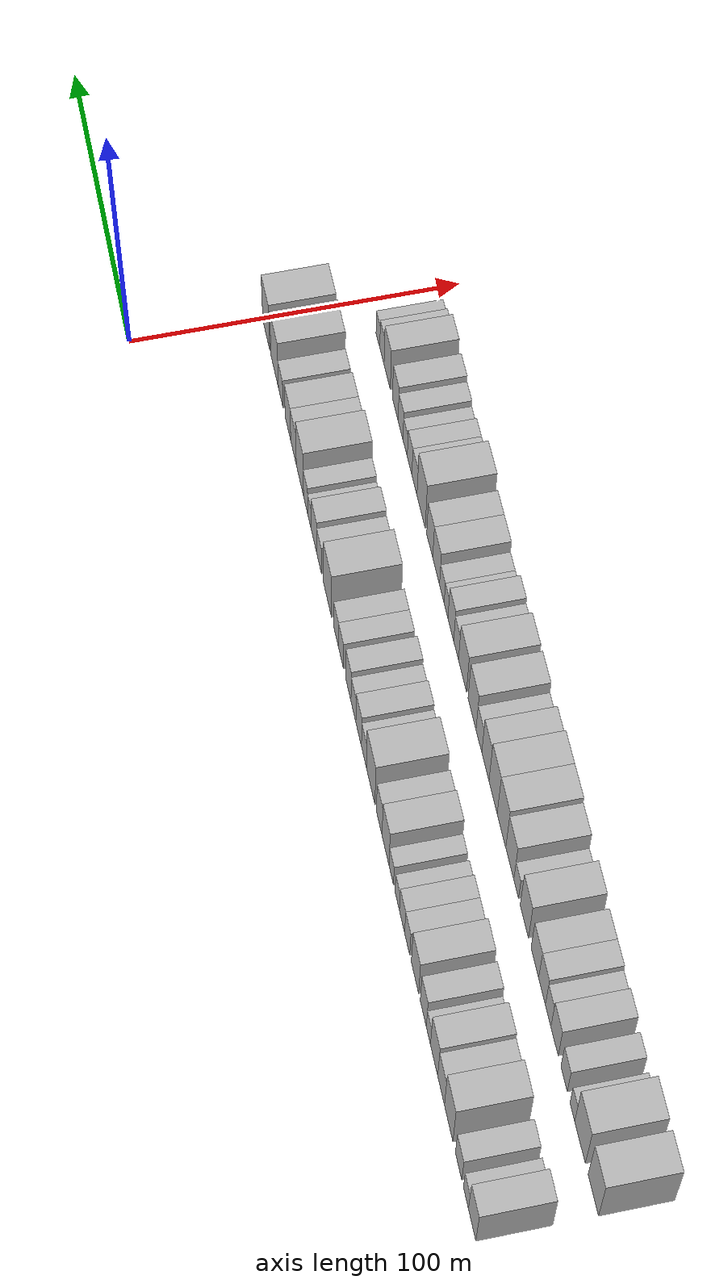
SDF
<sdf version="1.6">
 <world name="default">
  <model name="building_1">
   <static>1</static>
   <pose>50.0000 -279.7703 0 0.000000 0.000000 0.000000</pose>
   <link name="link">
    <pose>0 0 10.50 0 0 0</pose>
    <collision name="collision"><geometry><box><size>20.0000 8.4593 21.0000</size></box></geometry></collision>
    <visual name="visual">
     <cast_shadows>0</cast_shadows>
     <geometry><box><size>20.0000 8.4593 21.0000</size></box></geometry>
     <material>
      <script>
       <uri>model://HANNAS_wall/materials/scripts</uri>
       <uri>model://HANNAS_wall/materials/textures</uri>
       <name>vrc/HANNAS_wall</name>
      </script>
     </material>
    </visual>
   </link>
  </model>
  <model name="building_2">
   <static>1</static>
   <pose>50.0000 -272.6795 0 0.000000 0.000000 0.000000</pose>
   <link name="link">
    <pose>0 0 6.00 0 0 0</pose>
    <collision name="collision"><geometry><box><size>20.0000 5.7224 12.0000</size></box></geometry></collision>
    <visual name="visual">
     <cast_shadows>0</cast_shadows>
     <geometry><box><size>20.0000 5.7224 12.0000</size></box></geometry>
     <material>
      <script>
       <uri>model://HANNAS_wall/materials/scripts</uri>
       <uri>model://HANNAS_wall/materials/textures</uri>
       <name>vrc/HANNAS_wall</name>
      </script>
     </material>
    </visual>
   </link>
  </model>
  <model name="building_3">
   <static>1</static>
   <pose>50.0000 -264.1542 0 0.000000 0.000000 0.000000</pose>
   <link name="link">
    <pose>0 0 7.50 0 0 0</pose>
    <collision name="collision"><geometry><box><size>20.0000 7.3282 15.0000</size></box></geometry></collision>
    <visual name="visual">
     <cast_shadows>0</cast_shadows>
     <geometry><box><size>20.0000 7.3282 15.0000</size></box></geometry>
     <material>
      <script>
       <uri>model://HANNAS_wall/materials/scripts</uri>
       <uri>model://HANNAS_wall/materials/textures</uri>
       <name>vrc/HANNAS_wall</name>
      </script>
     </material>
    </visual>
   </link>
  </model>
  <model name="building_4">
   <static>1</static>
   <pose>50.0000 -252.5443 0 0.000000 0.000000 0.000000</pose>
   <link name="link">
    <pose>0 0 12.00 0 0 0</pose>
    <collision name="collision"><geometry><box><size>20.0000 9.8916 24.0000</size></box></geometry></collision>
    <visual name="visual">
     <cast_shadows>0</cast_shadows>
     <geometry><box><size>20.0000 9.8916 24.0000</size></box></geometry>
     <material>
      <script>
       <uri>model://HANNAS_wall/materials/scripts</uri>
       <uri>model://HANNAS_wall/materials/textures</uri>
       <name>vrc/HANNAS_wall</name>
      </script>
     </material>
    </visual>
   </link>
  </model>
  <model name="building_5">
   <static>1</static>
   <pose>50.0000 -243.5871 0 0.000000 0.000000 0.000000</pose>
   <link name="link">
    <pose>0 0 9.00 0 0 0</pose>
    <collision name="collision"><geometry><box><size>20.0000 8.0228 18.0000</size></box></geometry></collision>
    <visual name="visual">
     <cast_shadows>0</cast_shadows>
     <geometry><box><size>20.0000 8.0228 18.0000</size></box></geometry>
     <material>
      <script>
       <uri>model://HANNAS_wall/materials/scripts</uri>
       <uri>model://HANNAS_wall/materials/textures</uri>
       <name>vrc/HANNAS_wall</name>
      </script>
     </material>
    </visual>
   </link>
  </model>
  <model name="building_6">
   <static>1</static>
   <pose>50.0000 -235.2132 0 0.000000 0.000000 0.000000</pose>
   <link name="link">
    <pose>0 0 10.50 0 0 0</pose>
    <collision name="collision"><geometry><box><size>20.0000 8.7249 21.0000</size></box></geometry></collision>
    <visual name="visual">
     <cast_shadows>0</cast_shadows>
     <geometry><box><size>20.0000 8.7249 21.0000</size></box></geometry>
     <material>
      <script>
       <uri>model://HANNAS_wall/materials/scripts</uri>
       <uri>model://HANNAS_wall/materials/textures</uri>
       <name>vrc/HANNAS_wall</name>
      </script>
     </material>
    </visual>
   </link>
  </model>
  <model name="building_7">
   <static>1</static>
   <pose>50.0000 -228.3321 0 0.000000 0.000000 0.000000</pose>
   <link name="link">
    <pose>0 0 6.00 0 0 0</pose>
    <collision name="collision"><geometry><box><size>20.0000 5.0373 12.0000</size></box></geometry></collision>
    <visual name="visual">
     <cast_shadows>0</cast_shadows>
     <geometry><box><size>20.0000 5.0373 12.0000</size></box></geometry>
     <material>
      <script>
       <uri>model://HANNAS_wall/materials/scripts</uri>
       <uri>model://HANNAS_wall/materials/textures</uri>
       <name>vrc/HANNAS_wall</name>
      </script>
     </material>
    </visual>
   </link>
  </model>
  <model name="building_8">
   <static>1</static>
   <pose>50.0000 -222.1160 0 0.000000 0.000000 0.000000</pose>
   <link name="link">
    <pose>0 0 9.00 0 0 0</pose>
    <collision name="collision"><geometry><box><size>20.0000 7.3950 18.0000</size></box></geometry></collision>
    <visual name="visual">
     <cast_shadows>0</cast_shadows>
     <geometry><box><size>20.0000 7.3950 18.0000</size></box></geometry>
     <material>
      <script>
       <uri>model://HANNAS_wall/materials/scripts</uri>
       <uri>model://HANNAS_wall/materials/textures</uri>
       <name>vrc/HANNAS_wall</name>
      </script>
     </material>
    </visual>
   </link>
  </model>
  <model name="building_9">
   <static>1</static>
   <pose>50.0000 -211.9056 0 0.000000 0.000000 0.000000</pose>
   <link name="link">
    <pose>0 0 10.50 0 0 0</pose>
    <collision name="collision"><geometry><box><size>20.0000 9.0258 21.0000</size></box></geometry></collision>
    <visual name="visual">
     <cast_shadows>0</cast_shadows>
     <geometry><box><size>20.0000 9.0258 21.0000</size></box></geometry>
     <material>
      <script>
       <uri>model://HANNAS_wall/materials/scripts</uri>
       <uri>model://HANNAS_wall/materials/textures</uri>
       <name>vrc/HANNAS_wall</name>
      </script>
     </material>
    </visual>
   </link>
  </model>
  <model name="building_10">
   <static>1</static>
   <pose>50.0000 -202.2077 0 0.000000 0.000000 0.000000</pose>
   <link name="link">
    <pose>0 0 7.50 0 0 0</pose>
    <collision name="collision"><geometry><box><size>20.0000 6.3702 15.0000</size></box></geometry></collision>
    <visual name="visual">
     <cast_shadows>0</cast_shadows>
     <geometry><box><size>20.0000 6.3702 15.0000</size></box></geometry>
     <material>
      <script>
       <uri>model://HANNAS_wall/materials/scripts</uri>
       <uri>model://HANNAS_wall/materials/textures</uri>
       <name>vrc/HANNAS_wall</name>
      </script>
     </material>
    </visual>
   </link>
  </model>
  <model name="building_11">
   <static>1</static>
   <pose>50.0000 -195.7344 0 0.000000 0.000000 0.000000</pose>
   <link name="link">
    <pose>0 0 7.50 0 0 0</pose>
    <collision name="collision"><geometry><box><size>20.0000 6.5764 15.0000</size></box></geometry></collision>
    <visual name="visual">
     <cast_shadows>0</cast_shadows>
     <geometry><box><size>20.0000 6.5764 15.0000</size></box></geometry>
     <material>
      <script>
       <uri>model://HANNAS_wall/materials/scripts</uri>
       <uri>model://HANNAS_wall/materials/textures</uri>
       <name>vrc/HANNAS_wall</name>
      </script>
     </material>
    </visual>
   </link>
  </model>
  <model name="building_12">
   <static>1</static>
   <pose>50.0000 -189.6909 0 0.000000 0.000000 0.000000</pose>
   <link name="link">
    <pose>0 0 6.00 0 0 0</pose>
    <collision name="collision"><geometry><box><size>20.0000 5.5105 12.0000</size></box></geometry></collision>
    <visual name="visual">
     <cast_shadows>0</cast_shadows>
     <geometry><box><size>20.0000 5.5105 12.0000</size></box></geometry>
     <material>
      <script>
       <uri>model://HANNAS_wall/materials/scripts</uri>
       <uri>model://HANNAS_wall/materials/textures</uri>
       <name>vrc/HANNAS_wall</name>
      </script>
     </material>
    </visual>
   </link>
  </model>
  <model name="building_13">
   <static>1</static>
   <pose>50.0000 -182.0485 0 0.000000 0.000000 0.000000</pose>
   <link name="link">
    <pose>0 0 6.00 0 0 0</pose>
    <collision name="collision"><geometry><box><size>20.0000 5.7744 12.0000</size></box></geometry></collision>
    <visual name="visual">
     <cast_shadows>0</cast_shadows>
     <geometry><box><size>20.0000 5.7744 12.0000</size></box></geometry>
     <material>
      <script>
       <uri>model://HANNAS_wall/materials/scripts</uri>
       <uri>model://HANNAS_wall/materials/textures</uri>
       <name>vrc/HANNAS_wall</name>
      </script>
     </material>
    </visual>
   </link>
  </model>
  <model name="building_14">
   <static>1</static>
   <pose>50.0000 -174.7064 0 0.000000 0.000000 0.000000</pose>
   <link name="link">
    <pose>0 0 10.50 0 0 0</pose>
    <collision name="collision"><geometry><box><size>20.0000 8.9098 21.0000</size></box></geometry></collision>
    <visual name="visual">
     <cast_shadows>0</cast_shadows>
     <geometry><box><size>20.0000 8.9098 21.0000</size></box></geometry>
     <material>
      <script>
       <uri>model://HANNAS_wall/materials/scripts</uri>
       <uri>model://HANNAS_wall/materials/textures</uri>
       <name>vrc/HANNAS_wall</name>
      </script>
     </material>
    </visual>
   </link>
  </model>
  <model name="building_15">
   <static>1</static>
   <pose>50.0000 -166.5727 0 0.000000 0.000000 0.000000</pose>
   <link name="link">
    <pose>0 0 9.00 0 0 0</pose>
    <collision name="collision"><geometry><box><size>20.0000 7.3575 18.0000</size></box></geometry></collision>
    <visual name="visual">
     <cast_shadows>0</cast_shadows>
     <geometry><box><size>20.0000 7.3575 18.0000</size></box></geometry>
     <material>
      <script>
       <uri>model://HANNAS_wall/materials/scripts</uri>
       <uri>model://HANNAS_wall/materials/textures</uri>
       <name>vrc/HANNAS_wall</name>
      </script>
     </material>
    </visual>
   </link>
  </model>
  <model name="building_16">
   <static>1</static>
   <pose>50.0000 -155.3048 0 0.000000 0.000000 0.000000</pose>
   <link name="link">
    <pose>0 0 12.00 0 0 0</pose>
    <collision name="collision"><geometry><box><size>20.0000 11.1784 24.0000</size></box></geometry></collision>
    <visual name="visual">
     <cast_shadows>0</cast_shadows>
     <geometry><box><size>20.0000 11.1784 24.0000</size></box></geometry>
     <material>
      <script>
       <uri>model://HANNAS_wall/materials/scripts</uri>
       <uri>model://HANNAS_wall/materials/textures</uri>
       <name>vrc/HANNAS_wall</name>
      </script>
     </material>
    </visual>
   </link>
  </model>
  <model name="building_17">
   <static>1</static>
   <pose>50.0000 -146.4196 0 0.000000 0.000000 0.000000</pose>
   <link name="link">
    <pose>0 0 7.50 0 0 0</pose>
    <collision name="collision"><geometry><box><size>20.0000 6.5921 15.0000</size></box></geometry></collision>
    <visual name="visual">
     <cast_shadows>0</cast_shadows>
     <geometry><box><size>20.0000 6.5921 15.0000</size></box></geometry>
     <material>
      <script>
       <uri>model://HANNAS_wall/materials/scripts</uri>
       <uri>model://HANNAS_wall/materials/textures</uri>
       <name>vrc/HANNAS_wall</name>
      </script>
     </material>
    </visual>
   </link>
  </model>
  <model name="building_18">
   <static>1</static>
   <pose>50.0000 -139.3675 0 0.000000 0.000000 0.000000</pose>
   <link name="link">
    <pose>0 0 9.00 0 0 0</pose>
    <collision name="collision"><geometry><box><size>20.0000 7.5121 18.0000</size></box></geometry></collision>
    <visual name="visual">
     <cast_shadows>0</cast_shadows>
     <geometry><box><size>20.0000 7.5121 18.0000</size></box></geometry>
     <material>
      <script>
       <uri>model://HANNAS_wall/materials/scripts</uri>
       <uri>model://HANNAS_wall/materials/textures</uri>
       <name>vrc/HANNAS_wall</name>
      </script>
     </material>
    </visual>
   </link>
  </model>
  <model name="building_19">
   <static>1</static>
   <pose>50.0000 -132.3308 0 0.000000 0.000000 0.000000</pose>
   <link name="link">
    <pose>0 0 7.50 0 0 0</pose>
    <collision name="collision"><geometry><box><size>20.0000 6.5614 15.0000</size></box></geometry></collision>
    <visual name="visual">
     <cast_shadows>0</cast_shadows>
     <geometry><box><size>20.0000 6.5614 15.0000</size></box></geometry>
     <material>
      <script>
       <uri>model://HANNAS_wall/materials/scripts</uri>
       <uri>model://HANNAS_wall/materials/textures</uri>
       <name>vrc/HANNAS_wall</name>
      </script>
     </material>
    </visual>
   </link>
  </model>
  <model name="building_20">
   <static>1</static>
   <pose>50.0000 -125.4148 0 0.000000 0.000000 0.000000</pose>
   <link name="link">
    <pose>0 0 9.00 0 0 0</pose>
    <collision name="collision"><geometry><box><size>20.0000 7.2706 18.0000</size></box></geometry></collision>
    <visual name="visual">
     <cast_shadows>0</cast_shadows>
     <geometry><box><size>20.0000 7.2706 18.0000</size></box></geometry>
     <material>
      <script>
       <uri>model://HANNAS_wall/materials/scripts</uri>
       <uri>model://HANNAS_wall/materials/textures</uri>
       <name>vrc/HANNAS_wall</name>
      </script>
     </material>
    </visual>
   </link>
  </model>
  <model name="building_21">
   <static>1</static>
   <pose>50.0000 -115.3287 0 0.000000 0.000000 0.000000</pose>
   <link name="link">
    <pose>0 0 7.50 0 0 0</pose>
    <collision name="collision"><geometry><box><size>20.0000 6.9017 15.0000</size></box></geometry></collision>
    <visual name="visual">
     <cast_shadows>0</cast_shadows>
     <geometry><box><size>20.0000 6.9017 15.0000</size></box></geometry>
     <material>
      <script>
       <uri>model://HANNAS_wall/materials/scripts</uri>
       <uri>model://HANNAS_wall/materials/textures</uri>
       <name>vrc/HANNAS_wall</name>
      </script>
     </material>
    </visual>
   </link>
  </model>
  <model name="building_22">
   <static>1</static>
   <pose>50.0000 -108.5586 0 0.000000 0.000000 0.000000</pose>
   <link name="link">
    <pose>0 0 7.50 0 0 0</pose>
    <collision name="collision"><geometry><box><size>20.0000 6.6385 15.0000</size></box></geometry></collision>
    <visual name="visual">
     <cast_shadows>0</cast_shadows>
     <geometry><box><size>20.0000 6.6385 15.0000</size></box></geometry>
     <material>
      <script>
       <uri>model://HANNAS_wall/materials/scripts</uri>
       <uri>model://HANNAS_wall/materials/textures</uri>
       <name>vrc/HANNAS_wall</name>
      </script>
     </material>
    </visual>
   </link>
  </model>
  <model name="building_23">
   <static>1</static>
   <pose>50.0000 -96.6324 0 0.000000 0.000000 0.000000</pose>
   <link name="link">
    <pose>0 0 12.00 0 0 0</pose>
    <collision name="collision"><geometry><box><size>20.0000 11.2139 24.0000</size></box></geometry></collision>
    <visual name="visual">
     <cast_shadows>0</cast_shadows>
     <geometry><box><size>20.0000 11.2139 24.0000</size></box></geometry>
     <material>
      <script>
       <uri>model://HANNAS_wall/materials/scripts</uri>
       <uri>model://HANNAS_wall/materials/textures</uri>
       <name>vrc/HANNAS_wall</name>
      </script>
     </material>
    </visual>
   </link>
  </model>
  <model name="building_24">
   <static>1</static>
   <pose>50.0000 -84.7754 0 0.000000 0.000000 0.000000</pose>
   <link name="link">
    <pose>0 0 7.50 0 0 0</pose>
    <collision name="collision"><geometry><box><size>20.0000 6.5001 15.0000</size></box></geometry></collision>
    <visual name="visual">
     <cast_shadows>0</cast_shadows>
     <geometry><box><size>20.0000 6.5001 15.0000</size></box></geometry>
     <material>
      <script>
       <uri>model://HANNAS_wall/materials/scripts</uri>
       <uri>model://HANNAS_wall/materials/textures</uri>
       <name>vrc/HANNAS_wall</name>
      </script>
     </material>
    </visual>
   </link>
  </model>
  <model name="building_25">
   <static>1</static>
   <pose>50.0000 -77.5405 0 0.000000 0.000000 0.000000</pose>
   <link name="link">
    <pose>0 0 9.00 0 0 0</pose>
    <collision name="collision"><geometry><box><size>20.0000 7.9698 18.0000</size></box></geometry></collision>
    <visual name="visual">
     <cast_shadows>0</cast_shadows>
     <geometry><box><size>20.0000 7.9698 18.0000</size></box></geometry>
     <material>
      <script>
       <uri>model://HANNAS_wall/materials/scripts</uri>
       <uri>model://HANNAS_wall/materials/textures</uri>
       <name>vrc/HANNAS_wall</name>
      </script>
     </material>
    </visual>
   </link>
  </model>
  <model name="building_26">
   <static>1</static>
   <pose>50.0000 -70.9993 0 0.000000 0.000000 0.000000</pose>
   <link name="link">
    <pose>0 0 6.00 0 0 0</pose>
    <collision name="collision"><geometry><box><size>20.0000 5.1126 12.0000</size></box></geometry></collision>
    <visual name="visual">
     <cast_shadows>0</cast_shadows>
     <geometry><box><size>20.0000 5.1126 12.0000</size></box></geometry>
     <material>
      <script>
       <uri>model://HANNAS_wall/materials/scripts</uri>
       <uri>model://HANNAS_wall/materials/textures</uri>
       <name>vrc/HANNAS_wall</name>
      </script>
     </material>
    </visual>
   </link>
  </model>
  <model name="building_27">
   <static>1</static>
   <pose>50.0000 -65.3010 0 0.000000 0.000000 0.000000</pose>
   <link name="link">
    <pose>0 0 7.50 0 0 0</pose>
    <collision name="collision"><geometry><box><size>20.0000 6.2841 15.0000</size></box></geometry></collision>
    <visual name="visual">
     <cast_shadows>0</cast_shadows>
     <geometry><box><size>20.0000 6.2841 15.0000</size></box></geometry>
     <material>
      <script>
       <uri>model://HANNAS_wall/materials/scripts</uri>
       <uri>model://HANNAS_wall/materials/textures</uri>
       <name>vrc/HANNAS_wall</name>
      </script>
     </material>
    </visual>
   </link>
  </model>
  <model name="building_28">
   <static>1</static>
   <pose>50.0000 -56.8508 0 0.000000 0.000000 0.000000</pose>
   <link name="link">
    <pose>0 0 12.00 0 0 0</pose>
    <collision name="collision"><geometry><box><size>20.0000 10.6163 24.0000</size></box></geometry></collision>
    <visual name="visual">
     <cast_shadows>0</cast_shadows>
     <geometry><box><size>20.0000 10.6163 24.0000</size></box></geometry>
     <material>
      <script>
       <uri>model://HANNAS_wall/materials/scripts</uri>
       <uri>model://HANNAS_wall/materials/textures</uri>
       <name>vrc/HANNAS_wall</name>
      </script>
     </material>
    </visual>
   </link>
  </model>
  <model name="building_29">
   <static>1</static>
   <pose>50.0000 -47.4027 0 0.000000 0.000000 0.000000</pose>
   <link name="link">
    <pose>0 0 9.00 0 0 0</pose>
    <collision name="collision"><geometry><box><size>20.0000 8.2799 18.0000</size></box></geometry></collision>
    <visual name="visual">
     <cast_shadows>0</cast_shadows>
     <geometry><box><size>20.0000 8.2799 18.0000</size></box></geometry>
     <material>
      <script>
       <uri>model://HANNAS_wall/materials/scripts</uri>
       <uri>model://HANNAS_wall/materials/textures</uri>
       <name>vrc/HANNAS_wall</name>
      </script>
     </material>
    </visual>
   </link>
  </model>
  <model name="building_30">
   <static>1</static>
   <pose>50.0000 -39.0832 0 0.000000 0.000000 0.000000</pose>
   <link name="link">
    <pose>0 0 9.00 0 0 0</pose>
    <collision name="collision"><geometry><box><size>20.0000 8.3590 18.0000</size></box></geometry></collision>
    <visual name="visual">
     <cast_shadows>0</cast_shadows>
     <geometry><box><size>20.0000 8.3590 18.0000</size></box></geometry>
     <material>
      <script>
       <uri>model://HANNAS_wall/materials/scripts</uri>
       <uri>model://HANNAS_wall/materials/textures</uri>
       <name>vrc/HANNAS_wall</name>
      </script>
     </material>
    </visual>
   </link>
  </model>
  <model name="building_31">
   <static>1</static>
   <pose>50.0000 -28.3617 0 0.000000 0.000000 0.000000</pose>
   <link name="link">
    <pose>0 0 7.50 0 0 0</pose>
    <collision name="collision"><geometry><box><size>20.0000 7.0841 15.0000</size></box></geometry></collision>
    <visual name="visual">
     <cast_shadows>0</cast_shadows>
     <geometry><box><size>20.0000 7.0841 15.0000</size></box></geometry>
     <material>
      <script>
       <uri>model://HANNAS_wall/materials/scripts</uri>
       <uri>model://HANNAS_wall/materials/textures</uri>
       <name>vrc/HANNAS_wall</name>
      </script>
     </material>
    </visual>
   </link>
  </model>
  <model name="building_32">
   <static>1</static>
   <pose>50.0000 -19.1570 0 0.000000 0.000000 0.000000</pose>
   <link name="link">
    <pose>0 0 12.00 0 0 0</pose>
    <collision name="collision"><geometry><box><size>20.0000 11.3253 24.0000</size></box></geometry></collision>
    <visual name="visual">
     <cast_shadows>0</cast_shadows>
     <geometry><box><size>20.0000 11.3253 24.0000</size></box></geometry>
     <material>
      <script>
       <uri>model://HANNAS_wall/materials/scripts</uri>
       <uri>model://HANNAS_wall/materials/textures</uri>
       <name>vrc/HANNAS_wall</name>
      </script>
     </material>
    </visual>
   </link>
  </model>
  <model name="building_33">
   <static>1</static>
   <pose>50.0000 -6.0916 0 0.000000 0.000000 0.000000</pose>
   <link name="link">
    <pose>0 0 12.00 0 0 0</pose>
    <collision name="collision"><geometry><box><size>20.0000 10.8056 24.0000</size></box></geometry></collision>
    <visual name="visual">
     <cast_shadows>0</cast_shadows>
     <geometry><box><size>20.0000 10.8056 24.0000</size></box></geometry>
     <material>
      <script>
       <uri>model://HANNAS_wall/materials/scripts</uri>
       <uri>model://HANNAS_wall/materials/textures</uri>
       <name>vrc/HANNAS_wall</name>
      </script>
     </material>
    </visual>
   </link>
  </model>
  <model name="building_67">
   <static>1</static>
   <pose>82.0000 -278.5044 0 0.000000 0.000000 0.000000</pose>
   <link name="link">
    <pose>0 0 12.00 0 0 0</pose>
    <collision name="collision"><geometry><box><size>20.0000 10.9913 24.0000</size></box></geometry></collision>
    <visual name="visual">
     <cast_shadows>0</cast_shadows>
     <geometry><box><size>20.0000 10.9913 24.0000</size></box></geometry>
     <material>
      <script>
       <uri>model://HANNAS_wall/materials/scripts</uri>
       <uri>model://HANNAS_wall/materials/textures</uri>
       <name>vrc/HANNAS_wall</name>
      </script>
     </material>
    </visual>
   </link>
  </model>
  <model name="building_68">
   <static>1</static>
   <pose>82.0000 -264.3001 0 0.000000 0.000000 0.000000</pose>
   <link name="link">
    <pose>0 0 12.00 0 0 0</pose>
    <collision name="collision"><geometry><box><size>20.0000 11.4173 24.0000</size></box></geometry></collision>
    <visual name="visual">
     <cast_shadows>0</cast_shadows>
     <geometry><box><size>20.0000 11.4173 24.0000</size></box></geometry>
     <material>
      <script>
       <uri>model://HANNAS_wall/materials/scripts</uri>
       <uri>model://HANNAS_wall/materials/textures</uri>
       <name>vrc/HANNAS_wall</name>
      </script>
     </material>
    </visual>
   </link>
  </model>
  <model name="building_69">
   <static>1</static>
   <pose>82.0000 -256.0346 0 0.000000 0.000000 0.000000</pose>
   <link name="link">
    <pose>0 0 6.00 0 0 0</pose>
    <collision name="collision"><geometry><box><size>20.0000 5.1137 12.0000</size></box></geometry></collision>
    <visual name="visual">
     <cast_shadows>0</cast_shadows>
     <geometry><box><size>20.0000 5.1137 12.0000</size></box></geometry>
     <material>
      <script>
       <uri>model://HANNAS_wall/materials/scripts</uri>
       <uri>model://HANNAS_wall/materials/textures</uri>
       <name>vrc/HANNAS_wall</name>
      </script>
     </material>
    </visual>
   </link>
  </model>
  <model name="building_70">
   <static>1</static>
   <pose>82.0000 -246.9900 0 0.000000 0.000000 0.000000</pose>
   <link name="link">
    <pose>0 0 7.50 0 0 0</pose>
    <collision name="collision"><geometry><box><size>20.0000 6.9753 15.0000</size></box></geometry></collision>
    <visual name="visual">
     <cast_shadows>0</cast_shadows>
     <geometry><box><size>20.0000 6.9753 15.0000</size></box></geometry>
     <material>
      <script>
       <uri>model://HANNAS_wall/materials/scripts</uri>
       <uri>model://HANNAS_wall/materials/textures</uri>
       <name>vrc/HANNAS_wall</name>
      </script>
     </material>
    </visual>
   </link>
  </model>
  <model name="building_71">
   <static>1</static>
   <pose>82.0000 -236.4794 0 0.000000 0.000000 0.000000</pose>
   <link name="link">
    <pose>0 0 9.00 0 0 0</pose>
    <collision name="collision"><geometry><box><size>20.0000 8.0461 18.0000</size></box></geometry></collision>
    <visual name="visual">
     <cast_shadows>0</cast_shadows>
     <geometry><box><size>20.0000 8.0461 18.0000</size></box></geometry>
     <material>
      <script>
       <uri>model://HANNAS_wall/materials/scripts</uri>
       <uri>model://HANNAS_wall/materials/textures</uri>
       <name>vrc/HANNAS_wall</name>
      </script>
     </material>
    </visual>
   </link>
  </model>
  <model name="building_72">
   <static>1</static>
   <pose>82.0000 -229.3407 0 0.000000 0.000000 0.000000</pose>
   <link name="link">
    <pose>0 0 7.50 0 0 0</pose>
    <collision name="collision"><geometry><box><size>20.0000 6.2312 15.0000</size></box></geometry></collision>
    <visual name="visual">
     <cast_shadows>0</cast_shadows>
     <geometry><box><size>20.0000 6.2312 15.0000</size></box></geometry>
     <material>
      <script>
       <uri>model://HANNAS_wall/materials/scripts</uri>
       <uri>model://HANNAS_wall/materials/textures</uri>
       <name>vrc/HANNAS_wall</name>
      </script>
     </material>
    </visual>
   </link>
  </model>
  <model name="building_73">
   <static>1</static>
   <pose>82.0000 -222.4257 0 0.000000 0.000000 0.000000</pose>
   <link name="link">
    <pose>0 0 9.00 0 0 0</pose>
    <collision name="collision"><geometry><box><size>20.0000 7.5988 18.0000</size></box></geometry></collision>
    <visual name="visual">
     <cast_shadows>0</cast_shadows>
     <geometry><box><size>20.0000 7.5988 18.0000</size></box></geometry>
     <material>
      <script>
       <uri>model://HANNAS_wall/materials/scripts</uri>
       <uri>model://HANNAS_wall/materials/textures</uri>
       <name>vrc/HANNAS_wall</name>
      </script>
     </material>
    </visual>
   </link>
  </model>
  <model name="building_74">
   <static>1</static>
   <pose>82.0000 -214.3149 0 0.000000 0.000000 0.000000</pose>
   <link name="link">
    <pose>0 0 9.00 0 0 0</pose>
    <collision name="collision"><geometry><box><size>20.0000 8.6228 18.0000</size></box></geometry></collision>
    <visual name="visual">
     <cast_shadows>0</cast_shadows>
     <geometry><box><size>20.0000 8.6228 18.0000</size></box></geometry>
     <material>
      <script>
       <uri>model://HANNAS_wall/materials/scripts</uri>
       <uri>model://HANNAS_wall/materials/textures</uri>
       <name>vrc/HANNAS_wall</name>
      </script>
     </material>
    </visual>
   </link>
  </model>
  <model name="building_75">
   <static>1</static>
   <pose>82.0000 -202.2461 0 0.000000 0.000000 0.000000</pose>
   <link name="link">
    <pose>0 0 10.50 0 0 0</pose>
    <collision name="collision"><geometry><box><size>20.0000 9.5149 21.0000</size></box></geometry></collision>
    <visual name="visual">
     <cast_shadows>0</cast_shadows>
     <geometry><box><size>20.0000 9.5149 21.0000</size></box></geometry>
     <material>
      <script>
       <uri>model://HANNAS_wall/materials/scripts</uri>
       <uri>model://HANNAS_wall/materials/textures</uri>
       <name>vrc/HANNAS_wall</name>
      </script>
     </material>
    </visual>
   </link>
  </model>
  <model name="building_76">
   <static>1</static>
   <pose>82.0000 -192.7386 0 0.000000 0.000000 0.000000</pose>
   <link name="link">
    <pose>0 0 6.00 0 0 0</pose>
    <collision name="collision"><geometry><box><size>20.0000 5.5001 12.0000</size></box></geometry></collision>
    <visual name="visual">
     <cast_shadows>0</cast_shadows>
     <geometry><box><size>20.0000 5.5001 12.0000</size></box></geometry>
     <material>
      <script>
       <uri>model://HANNAS_wall/materials/scripts</uri>
       <uri>model://HANNAS_wall/materials/textures</uri>
       <name>vrc/HANNAS_wall</name>
      </script>
     </material>
    </visual>
   </link>
  </model>
  <model name="building_77">
   <static>1</static>
   <pose>82.0000 -185.2556 0 0.000000 0.000000 0.000000</pose>
   <link name="link">
    <pose>0 0 10.50 0 0 0</pose>
    <collision name="collision"><geometry><box><size>20.0000 9.4658 21.0000</size></box></geometry></collision>
    <visual name="visual">
     <cast_shadows>0</cast_shadows>
     <geometry><box><size>20.0000 9.4658 21.0000</size></box></geometry>
     <material>
      <script>
       <uri>model://HANNAS_wall/materials/scripts</uri>
       <uri>model://HANNAS_wall/materials/textures</uri>
       <name>vrc/HANNAS_wall</name>
      </script>
     </material>
    </visual>
   </link>
  </model>
  <model name="building_78">
   <static>1</static>
   <pose>82.0000 -175.4178 0 0.000000 0.000000 0.000000</pose>
   <link name="link">
    <pose>0 0 12.00 0 0 0</pose>
    <collision name="collision"><geometry><box><size>20.0000 10.2098 24.0000</size></box></geometry></collision>
    <visual name="visual">
     <cast_shadows>0</cast_shadows>
     <geometry><box><size>20.0000 10.2098 24.0000</size></box></geometry>
     <material>
      <script>
       <uri>model://HANNAS_wall/materials/scripts</uri>
       <uri>model://HANNAS_wall/materials/textures</uri>
       <name>vrc/HANNAS_wall</name>
      </script>
     </material>
    </visual>
   </link>
  </model>
  <model name="building_79">
   <static>1</static>
   <pose>82.0000 -165.3509 0 0.000000 0.000000 0.000000</pose>
   <link name="link">
    <pose>0 0 12.00 0 0 0</pose>
    <collision name="collision"><geometry><box><size>20.0000 9.9239 24.0000</size></box></geometry></collision>
    <visual name="visual">
     <cast_shadows>0</cast_shadows>
     <geometry><box><size>20.0000 9.9239 24.0000</size></box></geometry>
     <material>
      <script>
       <uri>model://HANNAS_wall/materials/scripts</uri>
       <uri>model://HANNAS_wall/materials/textures</uri>
       <name>vrc/HANNAS_wall</name>
      </script>
     </material>
    </visual>
   </link>
  </model>
  <model name="building_80">
   <static>1</static>
   <pose>82.0000 -156.0091 0 0.000000 0.000000 0.000000</pose>
   <link name="link">
    <pose>0 0 10.50 0 0 0</pose>
    <collision name="collision"><geometry><box><size>20.0000 8.7597 21.0000</size></box></geometry></collision>
    <visual name="visual">
     <cast_shadows>0</cast_shadows>
     <geometry><box><size>20.0000 8.7597 21.0000</size></box></geometry>
     <material>
      <script>
       <uri>model://HANNAS_wall/materials/scripts</uri>
       <uri>model://HANNAS_wall/materials/textures</uri>
       <name>vrc/HANNAS_wall</name>
      </script>
     </material>
    </visual>
   </link>
  </model>
  <model name="building_81">
   <static>1</static>
   <pose>82.0000 -148.0619 0 0.000000 0.000000 0.000000</pose>
   <link name="link">
    <pose>0 0 7.50 0 0 0</pose>
    <collision name="collision"><geometry><box><size>20.0000 7.1347 15.0000</size></box></geometry></collision>
    <visual name="visual">
     <cast_shadows>0</cast_shadows>
     <geometry><box><size>20.0000 7.1347 15.0000</size></box></geometry>
     <material>
      <script>
       <uri>model://HANNAS_wall/materials/scripts</uri>
       <uri>model://HANNAS_wall/materials/textures</uri>
       <name>vrc/HANNAS_wall</name>
      </script>
     </material>
    </visual>
   </link>
  </model>
  <model name="building_82">
   <static>1</static>
   <pose>82.0000 -139.5606 0 0.000000 0.000000 0.000000</pose>
   <link name="link">
    <pose>0 0 10.50 0 0 0</pose>
    <collision name="collision"><geometry><box><size>20.0000 9.8679 21.0000</size></box></geometry></collision>
    <visual name="visual">
     <cast_shadows>0</cast_shadows>
     <geometry><box><size>20.0000 9.8679 21.0000</size></box></geometry>
     <material>
      <script>
       <uri>model://HANNAS_wall/materials/scripts</uri>
       <uri>model://HANNAS_wall/materials/textures</uri>
       <name>vrc/HANNAS_wall</name>
      </script>
     </material>
    </visual>
   </link>
  </model>
  <model name="building_83">
   <static>1</static>
   <pose>82.0000 -127.6046 0 0.000000 0.000000 0.000000</pose>
   <link name="link">
    <pose>0 0 10.50 0 0 0</pose>
    <collision name="collision"><geometry><box><size>20.0000 10.0442 21.0000</size></box></geometry></collision>
    <visual name="visual">
     <cast_shadows>0</cast_shadows>
     <geometry><box><size>20.0000 10.0442 21.0000</size></box></geometry>
     <material>
      <script>
       <uri>model://HANNAS_wall/materials/scripts</uri>
       <uri>model://HANNAS_wall/materials/textures</uri>
       <name>vrc/HANNAS_wall</name>
      </script>
     </material>
    </visual>
   </link>
  </model>
  <model name="building_84">
   <static>1</static>
   <pose>82.0000 -119.5189 0 0.000000 0.000000 0.000000</pose>
   <link name="link">
    <pose>0 0 7.50 0 0 0</pose>
    <collision name="collision"><geometry><box><size>20.0000 6.1273 15.0000</size></box></geometry></collision>
    <visual name="visual">
     <cast_shadows>0</cast_shadows>
     <geometry><box><size>20.0000 6.1273 15.0000</size></box></geometry>
     <material>
      <script>
       <uri>model://HANNAS_wall/materials/scripts</uri>
       <uri>model://HANNAS_wall/materials/textures</uri>
       <name>vrc/HANNAS_wall</name>
      </script>
     </material>
    </visual>
   </link>
  </model>
  <model name="building_85">
   <static>1</static>
   <pose>82.0000 -112.7885 0 0.000000 0.000000 0.000000</pose>
   <link name="link">
    <pose>0 0 9.00 0 0 0</pose>
    <collision name="collision"><geometry><box><size>20.0000 7.3334 18.0000</size></box></geometry></collision>
    <visual name="visual">
     <cast_shadows>0</cast_shadows>
     <geometry><box><size>20.0000 7.3334 18.0000</size></box></geometry>
     <material>
      <script>
       <uri>model://HANNAS_wall/materials/scripts</uri>
       <uri>model://HANNAS_wall/materials/textures</uri>
       <name>vrc/HANNAS_wall</name>
      </script>
     </material>
    </visual>
   </link>
  </model>
  <model name="building_86">
   <static>1</static>
   <pose>82.0000 -106.6954 0 0.000000 0.000000 0.000000</pose>
   <link name="link">
    <pose>0 0 6.00 0 0 0</pose>
    <collision name="collision"><geometry><box><size>20.0000 4.8530 12.0000</size></box></geometry></collision>
    <visual name="visual">
     <cast_shadows>0</cast_shadows>
     <geometry><box><size>20.0000 4.8530 12.0000</size></box></geometry>
     <material>
      <script>
       <uri>model://HANNAS_wall/materials/scripts</uri>
       <uri>model://HANNAS_wall/materials/textures</uri>
       <name>vrc/HANNAS_wall</name>
      </script>
     </material>
    </visual>
   </link>
  </model>
  <model name="building_87">
   <static>1</static>
   <pose>82.0000 -101.2691 0 0.000000 0.000000 0.000000</pose>
   <link name="link">
    <pose>0 0 6.00 0 0 0</pose>
    <collision name="collision"><geometry><box><size>20.0000 5.9996 12.0000</size></box></geometry></collision>
    <visual name="visual">
     <cast_shadows>0</cast_shadows>
     <geometry><box><size>20.0000 5.9996 12.0000</size></box></geometry>
     <material>
      <script>
       <uri>model://HANNAS_wall/materials/scripts</uri>
       <uri>model://HANNAS_wall/materials/textures</uri>
       <name>vrc/HANNAS_wall</name>
      </script>
     </material>
    </visual>
   </link>
  </model>
  <model name="building_88">
   <static>1</static>
   <pose>82.0000 -93.8196 0 0.000000 0.000000 0.000000</pose>
   <link name="link">
    <pose>0 0 9.00 0 0 0</pose>
    <collision name="collision"><geometry><box><size>20.0000 8.8995 18.0000</size></box></geometry></collision>
    <visual name="visual">
     <cast_shadows>0</cast_shadows>
     <geometry><box><size>20.0000 8.8995 18.0000</size></box></geometry>
     <material>
      <script>
       <uri>model://HANNAS_wall/materials/scripts</uri>
       <uri>model://HANNAS_wall/materials/textures</uri>
       <name>vrc/HANNAS_wall</name>
      </script>
     </material>
    </visual>
   </link>
  </model>
  <model name="building_89">
   <static>1</static>
   <pose>82.0000 -85.4184 0 0.000000 0.000000 0.000000</pose>
   <link name="link">
    <pose>0 0 9.00 0 0 0</pose>
    <collision name="collision"><geometry><box><size>20.0000 7.9029 18.0000</size></box></geometry></collision>
    <visual name="visual">
     <cast_shadows>0</cast_shadows>
     <geometry><box><size>20.0000 7.9029 18.0000</size></box></geometry>
     <material>
      <script>
       <uri>model://HANNAS_wall/materials/scripts</uri>
       <uri>model://HANNAS_wall/materials/textures</uri>
       <name>vrc/HANNAS_wall</name>
      </script>
     </material>
    </visual>
   </link>
  </model>
  <model name="building_90">
   <static>1</static>
   <pose>82.0000 -74.0019 0 0.000000 0.000000 0.000000</pose>
   <link name="link">
    <pose>0 0 12.00 0 0 0</pose>
    <collision name="collision"><geometry><box><size>20.0000 10.9301 24.0000</size></box></geometry></collision>
    <visual name="visual">
     <cast_shadows>0</cast_shadows>
     <geometry><box><size>20.0000 10.9301 24.0000</size></box></geometry>
     <material>
      <script>
       <uri>model://HANNAS_wall/materials/scripts</uri>
       <uri>model://HANNAS_wall/materials/textures</uri>
       <name>vrc/HANNAS_wall</name>
      </script>
     </material>
    </visual>
   </link>
  </model>
  <model name="building_91">
   <static>1</static>
   <pose>82.0000 -65.0611 0 0.000000 0.000000 0.000000</pose>
   <link name="link">
    <pose>0 0 7.50 0 0 0</pose>
    <collision name="collision"><geometry><box><size>20.0000 6.9516 15.0000</size></box></geometry></collision>
    <visual name="visual">
     <cast_shadows>0</cast_shadows>
     <geometry><box><size>20.0000 6.9516 15.0000</size></box></geometry>
     <material>
      <script>
       <uri>model://HANNAS_wall/materials/scripts</uri>
       <uri>model://HANNAS_wall/materials/textures</uri>
       <name>vrc/HANNAS_wall</name>
      </script>
     </material>
    </visual>
   </link>
  </model>
  <model name="building_92">
   <static>1</static>
   <pose>82.0000 -58.5005 0 0.000000 0.000000 0.000000</pose>
   <link name="link">
    <pose>0 0 7.50 0 0 0</pose>
    <collision name="collision"><geometry><box><size>20.0000 6.1696 15.0000</size></box></geometry></collision>
    <visual name="visual">
     <cast_shadows>0</cast_shadows>
     <geometry><box><size>20.0000 6.1696 15.0000</size></box></geometry>
     <material>
      <script>
       <uri>model://HANNAS_wall/materials/scripts</uri>
       <uri>model://HANNAS_wall/materials/textures</uri>
       <name>vrc/HANNAS_wall</name>
      </script>
     </material>
    </visual>
   </link>
  </model>
  <model name="building_93">
   <static>1</static>
   <pose>82.0000 -52.4361 0 0.000000 0.000000 0.000000</pose>
   <link name="link">
    <pose>0 0 6.00 0 0 0</pose>
    <collision name="collision"><geometry><box><size>20.0000 5.9592 12.0000</size></box></geometry></collision>
    <visual name="visual">
     <cast_shadows>0</cast_shadows>
     <geometry><box><size>20.0000 5.9592 12.0000</size></box></geometry>
     <material>
      <script>
       <uri>model://HANNAS_wall/materials/scripts</uri>
       <uri>model://HANNAS_wall/materials/textures</uri>
       <name>vrc/HANNAS_wall</name>
      </script>
     </material>
    </visual>
   </link>
  </model>
  <model name="building_94">
   <static>1</static>
   <pose>82.0000 -46.1338 0 0.000000 0.000000 0.000000</pose>
   <link name="link">
    <pose>0 0 7.50 0 0 0</pose>
    <collision name="collision"><geometry><box><size>20.0000 6.6454 15.0000</size></box></geometry></collision>
    <visual name="visual">
     <cast_shadows>0</cast_shadows>
     <geometry><box><size>20.0000 6.6454 15.0000</size></box></geometry>
     <material>
      <script>
       <uri>model://HANNAS_wall/materials/scripts</uri>
       <uri>model://HANNAS_wall/materials/textures</uri>
       <name>vrc/HANNAS_wall</name>
      </script>
     </material>
    </visual>
   </link>
  </model>
  <model name="building_95">
   <static>1</static>
   <pose>82.0000 -38.9024 0 0.000000 0.000000 0.000000</pose>
   <link name="link">
    <pose>0 0 9.00 0 0 0</pose>
    <collision name="collision"><geometry><box><size>20.0000 7.8174 18.0000</size></box></geometry></collision>
    <visual name="visual">
     <cast_shadows>0</cast_shadows>
     <geometry><box><size>20.0000 7.8174 18.0000</size></box></geometry>
     <material>
      <script>
       <uri>model://HANNAS_wall/materials/scripts</uri>
       <uri>model://HANNAS_wall/materials/textures</uri>
       <name>vrc/HANNAS_wall</name>
      </script>
     </material>
    </visual>
   </link>
  </model>
  <model name="building_96">
   <static>1</static>
   <pose>82.0000 -27.6349 0 0.000000 0.000000 0.000000</pose>
   <link name="link">
    <pose>0 0 10.50 0 0 0</pose>
    <collision name="collision"><geometry><box><size>20.0000 8.7177 21.0000</size></box></geometry></collision>
    <visual name="visual">
     <cast_shadows>0</cast_shadows>
     <geometry><box><size>20.0000 8.7177 21.0000</size></box></geometry>
     <material>
      <script>
       <uri>model://HANNAS_wall/materials/scripts</uri>
       <uri>model://HANNAS_wall/materials/textures</uri>
       <name>vrc/HANNAS_wall</name>
      </script>
     </material>
    </visual>
   </link>
  </model>
  <model name="building_97">
   <static>1</static>
   <pose>82.0000 -20.2644 0 0.000000 0.000000 0.000000</pose>
   <link name="link">
    <pose>0 0 7.50 0 0 0</pose>
    <collision name="collision"><geometry><box><size>20.0000 6.0232 15.0000</size></box></geometry></collision>
    <visual name="visual">
     <cast_shadows>0</cast_shadows>
     <geometry><box><size>20.0000 6.0232 15.0000</size></box></geometry>
     <material>
      <script>
       <uri>model://HANNAS_wall/materials/scripts</uri>
       <uri>model://HANNAS_wall/materials/textures</uri>
       <name>vrc/HANNAS_wall</name>
      </script>
     </material>
    </visual>
   </link>
  </model>
  <model name="building_98">
   <static>1</static>
   <pose>82.0000 -14.5830 0 0.000000 0.000000 0.000000</pose>
   <link name="link">
    <pose>0 0 6.00 0 0 0</pose>
    <collision name="collision"><geometry><box><size>20.0000 5.3396 12.0000</size></box></geometry></collision>
    <visual name="visual">
     <cast_shadows>0</cast_shadows>
     <geometry><box><size>20.0000 5.3396 12.0000</size></box></geometry>
     <material>
      <script>
       <uri>model://HANNAS_wall/materials/scripts</uri>
       <uri>model://HANNAS_wall/materials/textures</uri>
       <name>vrc/HANNAS_wall</name>
      </script>
     </material>
    </visual>
   </link>
  </model>
 </world>
</sdf>
